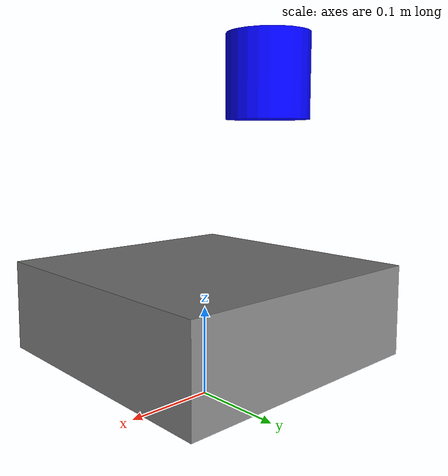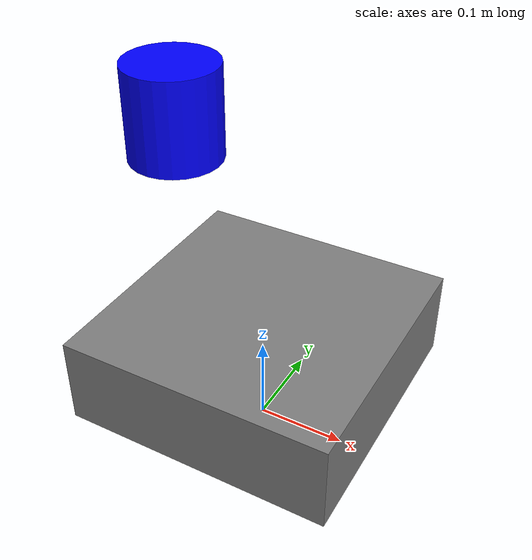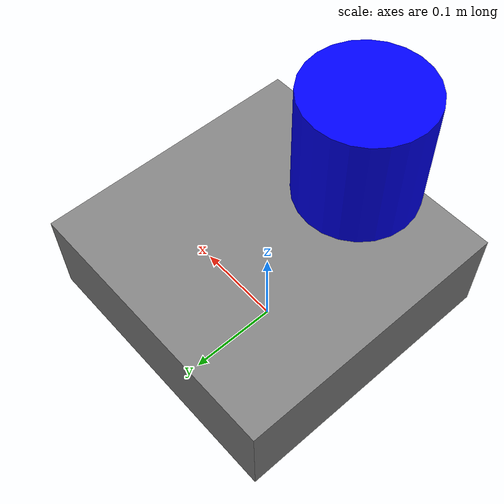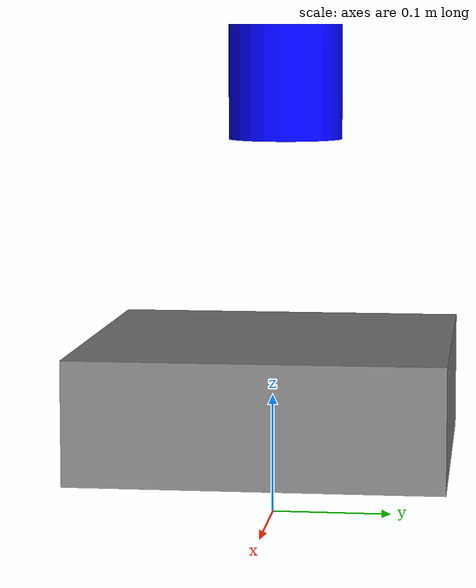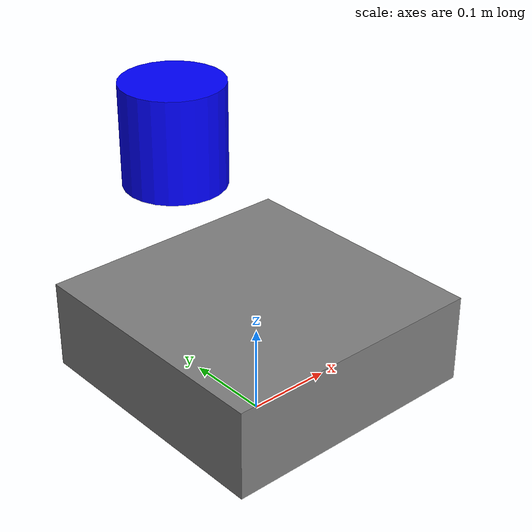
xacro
<?xml version="1.0"?>
<robot name="x500_lidar" xmlns:xacro="http://ros.org/wiki/xacro">

  <!-- Base footprint (at ground contact) -->
  <link name="base_footprint"/>

  <!-- Base link (main body of the drone) -->
  <link name="base_link">
    <visual>
      <geometry>
        <box size="0.3 0.3 0.1"/> <!-- simple placeholder -->
      </geometry>
      <material name="gray">
        <color rgba="0.5 0.5 0.5 1.0"/>
      </material>
    </visual>
  </link>

  <!-- Fixed joint between base_footprint and base_link -->
  <joint name="base_footprint_joint" type="fixed">
    <parent link="base_footprint"/>
    <child link="base_link"/>
    <origin xyz="0 0 0.1" rpy="0 0 0"/> <!-- adjust height if needed -->
  </joint>

  <!-- LiDAR link -->
  <link name="lidar_link">
    <visual>
      <geometry>
        <cylinder radius="0.05" length="0.1"/> <!-- simplified lidar shape -->
      </geometry>
      <material name="blue">
        <color rgba="0 0 1 1.0"/>
      </material>
    </visual>
  </link>

  <!-- LiDAR joint: place relative to base_link -->
  <joint name="lidar_joint" type="fixed">
    <parent link="base_link"/>
    <child link="lidar_link"/>
    <!-- From your SDF: lidar pose ≈ -0.1 0 0.26 -->
    <origin xyz="-0.1 0 0.26" rpy="0 0 0"/>
  </joint>

  <!-- Odometry frame -->

</robot>
